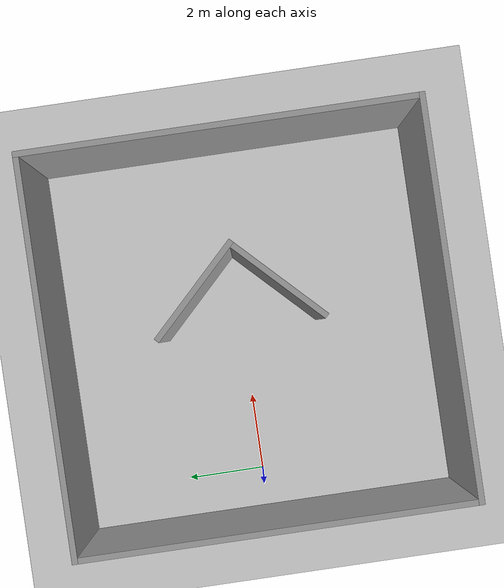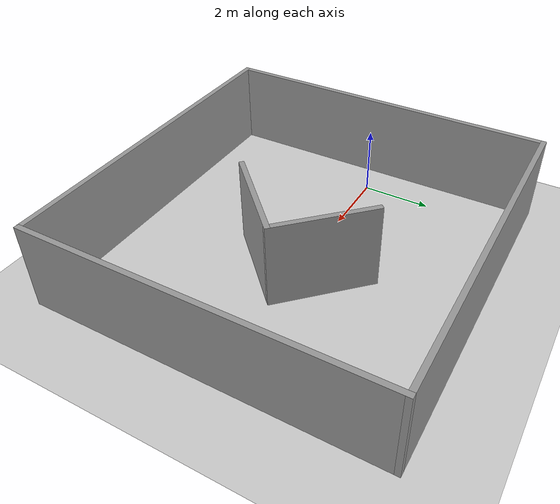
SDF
<sdf version="1.6">
 <world name="default">
  <light name="sun" type="directional">
   <pose>0 0 10 0 -0 0</pose>
   <diffuse>0.8 0.8 0.8 1</diffuse>
   <specular>0.2 0.2 0.2 1</specular>
   <attenuation>
    <range>1000</range>
    <constant>0.9</constant>
    <linear>0.01</linear>
    <quadratic>0.001</quadratic>
   </attenuation>
   <direction>-0.5 0.1 -0.9</direction>
  </light>
  <model name="ground_plane">
   <static>1</static>
   <link name="link">
    <collision name="collision">
     <geometry><plane><normal>0 0 1</normal><size>100 100</size></plane></geometry>
     <surface><friction><ode><mu>100</mu><mu2>50</mu2></ode></friction></surface>
    </collision>
    <visual name="visual">
     <cast_shadows>0</cast_shadows>
     <geometry><plane><normal>0 0 1</normal><size>100 100</size></plane></geometry>
     <material>
      <script><uri>file://media/materials/scripts/gazebo.material</uri><name>Gazebo/Grey</name></script>
     </material>
    </visual>
   </link>
  </model>
  <gravity>0 0 -9.8</gravity>
  <magnetic_field>6e-06 2.3e-05 -4.2e-05</magnetic_field>
  <atmosphere type="adiabatic"/>
  <physics name="default_physics" default="0" type="ode">
   <max_step_size>0.001</max_step_size>
   <real_time_factor>1</real_time_factor>
   <real_time_update_rate>1000</real_time_update_rate>
  </physics>
  <scene><ambient>0.4 0.4 0.4 1</ambient><background>0.7 0.7 0.7 1</background><shadows>1</shadows></scene>
  <spherical_coordinates>
   <surface_model>EARTH_WGS84</surface_model>
   <latitude_deg>0</latitude_deg>
   <longitude_deg>0</longitude_deg>
   <elevation>0</elevation>
   <heading_deg>0</heading_deg>
  </spherical_coordinates>
  <model name="irl_test1">
   <pose>3.83245 -0.1616 0 0 -0 0</pose>
   <link name="Wall_5">
    <collision name="Wall_5_Collision">
     <geometry><box><size>10 0.15 2.5</size></box></geometry>
     <pose>0 0 1.25 0 -0 0</pose>
    </collision>
    <visual name="Wall_5_Visual">
     <pose>0 0 1.25 0 -0 0</pose>
     <geometry><box><size>10 0.15 2.5</size></box></geometry>
     <material>
      <script><uri>file://media/materials/scripts/gazebo.material</uri><name>Gazebo/Grey</name></script>
      <ambient>1 1 1 1</ambient>
     </material>
     <meta><layer>0</layer></meta>
    </visual>
    <pose>0 -4.925 0 0 -0 0</pose>
   </link>
   <link name="Wall_6">
    <collision name="Wall_6_Collision">
     <geometry><box><size>10 0.15 2.5</size></box></geometry>
     <pose>0 0 1.25 0 -0 0</pose>
    </collision>
    <visual name="Wall_6_Visual">
     <pose>0 0 1.25 0 -0 0</pose>
     <geometry><box><size>10 0.15 2.5</size></box></geometry>
     <material>
      <script><uri>file://media/materials/scripts/gazebo.material</uri><name>Gazebo/Grey</name></script>
      <ambient>1 1 1 1</ambient>
     </material>
     <meta><layer>0</layer></meta>
    </visual>
    <pose>4.925 0 0 0 -0 1.5708</pose>
   </link>
   <link name="Wall_7">
    <collision name="Wall_7_Collision">
     <geometry><box><size>10 0.15 2.5</size></box></geometry>
     <pose>0 0 1.25 0 -0 0</pose>
    </collision>
    <visual name="Wall_7_Visual">
     <pose>0 0 1.25 0 -0 0</pose>
     <geometry><box><size>10 0.15 2.5</size></box></geometry>
     <material>
      <script><uri>file://media/materials/scripts/gazebo.material</uri><name>Gazebo/Grey</name></script>
      <ambient>1 1 1 1</ambient>
     </material>
     <meta><layer>0</layer></meta>
    </visual>
    <pose>0 4.925 0 0 -0 3.14159</pose>
   </link>
   <link name="Wall_8">
    <collision name="Wall_8_Collision">
     <geometry><box><size>10 0.15 2.5</size></box></geometry>
     <pose>0 0 1.25 0 -0 0</pose>
    </collision>
    <visual name="Wall_8_Visual">
     <pose>0 0 1.25 0 -0 0</pose>
     <geometry><box><size>10 0.15 2.5</size></box></geometry>
     <material>
      <script><uri>file://media/materials/scripts/gazebo.material</uri><name>Gazebo/Grey</name></script>
      <ambient>1 1 1 1</ambient>
     </material>
     <meta><layer>0</layer></meta>
    </visual>
    <pose>-4.925 0 0 0 -0 -1.5708</pose>
   </link>
   <static>1</static>
  </model>
  <model name="triangle">
   <pose>4.90519 -0.004572 0 0 -0 0</pose>
   <link name="Wall_6">
    <collision name="Wall_6_Collision">
     <geometry><box><size>3 0.15 2.5</size></box></geometry>
     <pose>0 0 1.25 0 -0 0</pose>
    </collision>
    <visual name="Wall_6_Visual">
     <pose>0 0 1.25 0 -0 0</pose>
     <geometry><box><size>3 0.15 2.5</size></box></geometry>
     <material>
      <script><uri>file://media/materials/scripts/gazebo.material</uri><name>Gazebo/Grey</name></script>
      <ambient>1 1 1 1</ambient>
     </material>
     <meta><layer>0</layer></meta>
    </visual>
    <pose>0 1.00763 0 0 -0 -0.785398</pose>
   </link>
   <link name="Wall_7">
    <collision name="Wall_7_Collision">
     <geometry><box><size>3 0.15 2.5</size></box></geometry>
     <pose>0 0 1.25 0 -0 0</pose>
    </collision>
    <visual name="Wall_7_Visual">
     <pose>0 0 1.25 0 -0 0</pose>
     <geometry><box><size>3 0.15 2.5</size></box></geometry>
     <material>
      <script><uri>file://media/materials/scripts/gazebo.material</uri><name>Gazebo/Grey</name></script>
      <ambient>1 1 1 1</ambient>
     </material>
     <meta><layer>0</layer></meta>
    </visual>
    <pose>0 -1.00763 0 0 -0 -2.35619</pose>
   </link>
   <static>1</static>
  </model>
 </world>
</sdf>
